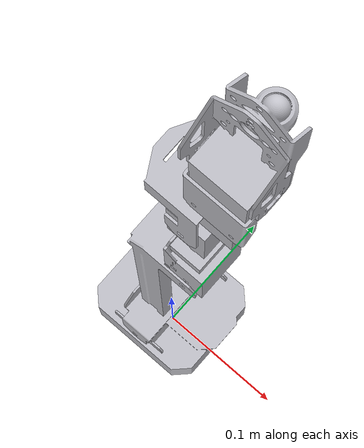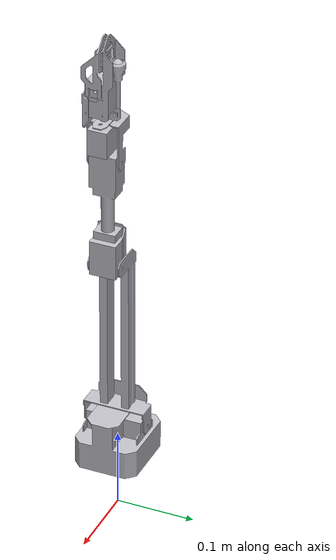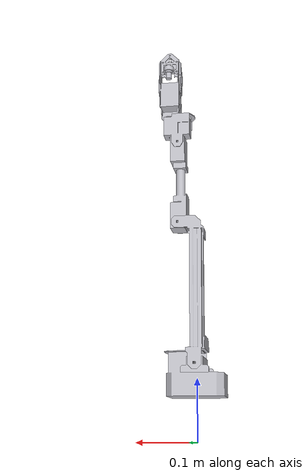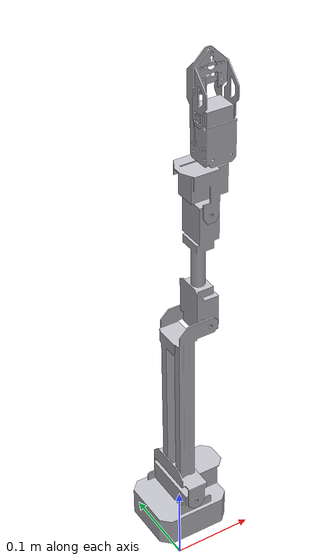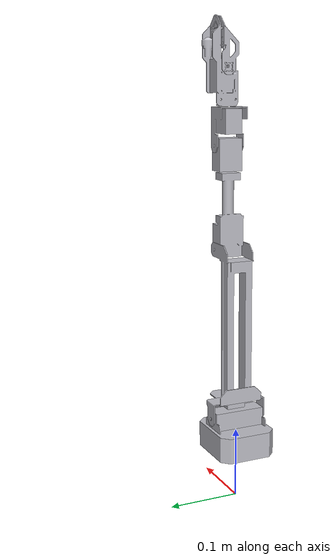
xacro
<?xml version="1.0" ?>
<robot name="roarm_m3" xmlns:xacro="http://www.ros.org/wiki/xacro">

<xacro:include filename="$(find roarm_description)/urdf/roarm_m3/materials.xacro" />
<xacro:include filename="$(find roarm_description)/urdf/roarm_m3/roarm_m3.trans" />
<xacro:include filename="$(find roarm_description)/urdf/roarm_m3/roarm_m3.gazebo" />
<link name="world"></link>

<link name="base_link">
  <inertial>
    <origin xyz="-0.0068 0 -0.03" rpy="0 0 0" />
    <mass value="0.2562183" />
    <inertia ixx="0.00029211" ixy="0" ixz="0" iyy="0.00035719" iyz="0" izz="0.000349421" />
  </inertial>
  <visual>
    <origin xyz="0 0 0" rpy="0 0 0"/>
    <geometry>
      <mesh filename="file://$(find roarm_description)/meshes/roarm_m3/base_link.stl" scale="0.001 0.001 0.001"/>
    </geometry>
    <material name="silver"/>
  </visual>
  <collision>
    <origin xyz="0 0 0" rpy="0 0 0"/>
    <geometry>
      <mesh filename="file://$(find roarm_description)/meshes/roarm_m3/base_link.stl" scale="0.001 0.001 0.001"/>
    </geometry>
  </collision>
</link>

<link name="link1">
  <inertial>
    <origin xyz="0 0 0.037" rpy="0 0 0" />
    <mass value="0.0729177" />
    <inertia ixx="4.68465E-05" ixy="0" ixz="0" iyy="3.32107E-05" iyz="0" izz="5.01023E-05" />
  </inertial>
  <visual>
    <origin xyz="-0.0 -0.0 -0.0" rpy="0 0 0"/>
    <geometry>
      <mesh filename="file://$(find roarm_description)/meshes/roarm_m3/link1.stl" scale="0.001 0.001 0.001"/>
    </geometry>
    <material name="silver"/>
  </visual>
  <collision>
    <origin xyz="-0.0 -0.0 -0.0" rpy="0 0 0"/>
    <geometry>
      <mesh filename="file://$(find roarm_description)/meshes/roarm_m3/link1.stl" scale="0.001 0.001 0.001"/>
    </geometry>
  </collision>
</link>

<link name="link2">
  <inertial>
    <origin xyz="0.119 0.012247 -0.0001 " rpy="0 0 0"/>
    <mass value="0.0703216" />
    <inertia ixx="5.46501E-05" ixy="0" ixz="0" iyy="0.000423091" iyz="0" izz="0.000404557" />
  </inertial>
  <visual>
    <origin xyz="0 0 0" rpy="0 0 0"/>
    <geometry>
      <mesh filename="file://$(find roarm_description)/meshes/roarm_m3/link2.stl" scale="0.001 0.001 0.001"/>
    </geometry>
    <material name="silver"/>
  </visual>
  <collision>
    <origin xyz="0 0 0" rpy="0 0 0"/>
    <geometry>
      <mesh filename="file://$(find roarm_description)/meshes/roarm_m3/link2.stl" scale="0.001 0.001 0.001"/>
    </geometry>
  </collision>
</link>

<link name="link3">
  <inertial>
    <origin xyz="-0.0015 -0.0765 0.00505" rpy="0 0 0"/>
    <mass value="0.021608"/>
    <inertia ixx="6.37699E-05" iyy="3.67026E-06" izz="6.28965E-05" ixy="0.0" iyz="0" ixz="0"/>
  </inertial>
  <visual>
    <origin xyz="0 0 0" rpy="0 0 0"/>
    <geometry>
      <mesh filename="file://$(find roarm_description)/meshes/roarm_m3/link3.stl" scale="0.001 0.001 0.001"/>
    </geometry>
    <material name="silver"/>
  </visual>
  <collision>
    <origin xyz="0 0 0" rpy="0 0 0"/>
    <geometry>
      <mesh filename="file://$(find roarm_description)/meshes/roarm_m3/link3.stl" scale="0.001 0.001 0.001"/>
    </geometry>
  </collision>
</link>

<link name="link4">
  <inertial>
    <origin xyz="-0.0015 -0.022 -0.00075" rpy="0 0 0"/>
    <mass value="0.0099933"/>
    <inertia ixx="4.53979E-06" iyy="3.78103E-06" izz="5.60238E-06" ixy="-0.0" iyz="-0.0" ixz="0.0"/>
  </inertial>
  <visual>
    <origin xyz="0 0 0" rpy="0 0 0"/>
    <geometry>
      <mesh filename="file://$(find roarm_description)/meshes/roarm_m3/link4.stl" scale="0.001 0.001 0.001"/>
    </geometry>
    <material name="silver"/>
  </visual>
  <collision>
    <origin xyz="0 0 0" rpy="0 0 0"/>
    <geometry>
      <mesh filename="file://$(find roarm_description)/meshes/roarm_m3/link4.stl" scale="0.001 0.001 0.001"/>
    </geometry>
  </collision>
</link>

<link name="link5">
  <inertial>
    <origin xyz="-0.0078 0 0.0595" rpy="0 0 0"/>
    <mass value="0.0153928"/>
    <inertia ixx="2.02869E-05" iyy="2.14427E-05" izz="4.39495E-06" ixy="-0.0" iyz="0" ixz="0"/>
  </inertial>
  <visual>
    <origin xyz="0 0 0" rpy="0 0 0"/>
    <geometry>
      <mesh filename="file://$(find roarm_description)/meshes/roarm_m3/link5.stl" scale="0.001 0.001 0.001"/>
    </geometry>
    <material name="silver"/>
  </visual>
  <collision>
    <origin xyz="0 0 0" rpy="0 0 0"/>
    <geometry>
      <mesh filename="file://$(find roarm_description)/meshes/roarm_m3/link5.stl" scale="0.001 0.001 0.001"/>
    </geometry>
  </collision>
</link>

<link name="gripper_link">
  <inertial>
    <origin xyz="0.027 0.0027 -0.018935" rpy="0 0 0"/>
    <mass value="0.0028708" />
    <inertia ixx="5.23216E-07" ixy="0" ixz="0" iyy="1.82071E-06" iyz="0" izz="1.60231E-06" />
  </inertial>
  <visual>
    <origin xyz="0 0 0" rpy="0 0 0"/>
    <geometry>
      <mesh filename="file://$(find roarm_description)/meshes/roarm_m3/gripper_link.stl" scale="0.001 0.001 0.001"/>
    </geometry>
    <material name="silver"/>
  </visual>
  <collision>
    <origin xyz="0 0 0" rpy="0 0 0"/>
    <geometry>
      <mesh filename="file://$(find roarm_description)/meshes/roarm_m3/gripper_link.stl" scale="0.001 0.001 0.001"/>
    </geometry>
  </collision>
</link>

<link name="hand_tcp"></link>

<joint name="world_to_base_link" type="fixed">
  <origin xyz="0.0 0.0 0.0701" rpy="0 0 0"/>
  <parent link="world"/>
  <child link="base_link"/>
  <axis xyz="0.0 0.0 1.0"/>
</joint>

<joint name="base_link_to_link1" type="revolute">
  <origin xyz="0.0 0.0 0.0" rpy="0 0 0"/>
  <parent link="base_link"/>
  <child link="link1"/>
  <axis xyz="0.0 0.0 1.0"/>
  <limit
    lower="-3.1416"
    upper="3.1416"
    effort="0"
    velocity="0" />
</joint>

<joint name="link1_to_link2" type="revolute">
  <origin xyz="0.0 0.0 0.051959" rpy="-1.5708 -1.5708 0"/>
  <parent link="link1"/>
  <child link="link2"/>
  <axis xyz="-0.0 0 1.0"/>
  <limit
    lower="-1.5708"
    upper="1.5708"
    effort="0"
    velocity="0" />
</joint>

<joint name="link2_to_link3" type="revolute">
  <origin xyz="0.236815 0.030002 0" rpy="0 0 1.5708"/>
  <parent link="link2"/>
  <child link="link3"/>
  <axis xyz="0.0 0.0 1.0"/>
  <limit
    lower="-1"
    upper="2.95"
    effort="0"
    velocity="0" />
</joint>

<joint name="link3_to_link4" type="revolute">
  <origin xyz="0.0 -0.144586 0" rpy="0 0 0"/>
  <parent link="link3"/>
  <child link="link4"/>
  <axis xyz="0.0 0.0 1.0"/>
  <limit
    lower="-1.5708"
    upper="1.5708"
    effort="0"
    velocity="0" />
</joint>

<joint name="link4_to_link5" type="revolute">
  <origin xyz="0.015147 -0.053653 0" rpy="1.5708 1.5708 0"/>
  <parent link="link4"/>
  <child link="link5"/>
  <axis xyz="0.0 0.0 1.0"/>
  <limit
    lower="-3.1416"
    upper="3.1416"
    effort="0"
    velocity="0" />
</joint>

<joint name="link5_to_gripper_link" type="revolute">
  <origin xyz="0.00 0.018821 0.052035" rpy="-1.5708 -1.5708 0"/>
  <parent link="link5"/>
  <child link="gripper_link"/>
  <axis xyz="0.0 -0.0 1.0"/>
  <limit
    lower="0"
    upper="1.5"
    effort="0"
    velocity="0" />
</joint>

<joint name="link5_to_hand_tcp" type="fixed">
  <origin xyz="0 0 0.115428" rpy="1.5708 -1.5708 0"/>
  <parent link="link5"/>
  <child link="hand_tcp"/>
  <axis xyz="0 0 0"/>
</joint>

<ros2_control name="GazeboSystem" type="system">

  <hardware>
    <plugin>gazebo_ros2_control/GazeboSystem</plugin>
  </hardware>

  <joint name="base_link_to_link1">
    <command_interface name="position"/>
    <state_interface name="position"/>
    <state_interface name="velocity"/>
  </joint>

  <joint name="link1_to_link2">
    <command_interface name="position"/>
    <state_interface name="position"/>
    <state_interface name="velocity"/>
  </joint>

  <joint name="link2_to_link3">
    <command_interface name="position"/>
    <state_interface name="position"/>
    <state_interface name="velocity"/>
  </joint>

  <joint name="link3_to_link4">
    <command_interface name="position"/>
    <state_interface name="position"/>
    <state_interface name="velocity"/>
  </joint>

  <joint name="link4_to_link5">
    <command_interface name="position"/>
    <state_interface name="position"/>
    <state_interface name="velocity"/>
  </joint>

  <joint name="link5_to_gripper_link">
    <command_interface name="position"/>
    <state_interface name="position"/>
    <state_interface name="velocity"/>
  </joint>

</ros2_control>

</robot>

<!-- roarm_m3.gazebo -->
<robot name="roarm_m3" xmlns:xacro="http://www.ros.org/wiki/xacro" >

<xacro:property name="body_color" value="Gazebo/Silver" />
<gazebo>
  <plugin name="gazebo_ros2_control" filename="libgazebo_ros2_control.so">
    <parameters>$(find roarm_description)/config/ros2_controllers.yaml</parameters>
  </plugin>
</gazebo>
<gazebo reference="base_link">
  <material>${body_color}</material>
  <mu1>0.2</mu1>
  <mu2>0.2</mu2>
  <self_collide>true</self_collide>
  <gravity>true</gravity>
</gazebo>

<gazebo reference="link1">
  <material>${body_color}</material>
  <mu1>0.2</mu1>
  <mu2>0.2</mu2>
  <self_collide>true</self_collide>
</gazebo>

<gazebo reference="link2">
  <material>${body_color}</material>
  <mu1>0.2</mu1>
  <mu2>0.2</mu2>
  <self_collide>true</self_collide>
</gazebo>

<gazebo reference="link3">
  <material>${body_color}</material>
  <mu1>0.2</mu1>
  <mu2>0.2</mu2>
  <self_collide>true</self_collide>
</gazebo>

<gazebo reference="link4">
  <material>${body_color}</material>
  <mu1>0.2</mu1>
  <mu2>0.2</mu2>
  <self_collide>true</self_collide>
</gazebo>

<gazebo reference="link5">
  <material>${body_color}</material>
  <mu1>0.2</mu1>
  <mu2>0.2</mu2>
  <self_collide>true</self_collide>
</gazebo>

<gazebo reference="gripper_link">
  <material>${body_color}</material>
  <mu1>0.2</mu1>
  <mu2>0.2</mu2>
  <self_collide>true</self_collide>
</gazebo>

</robot>
